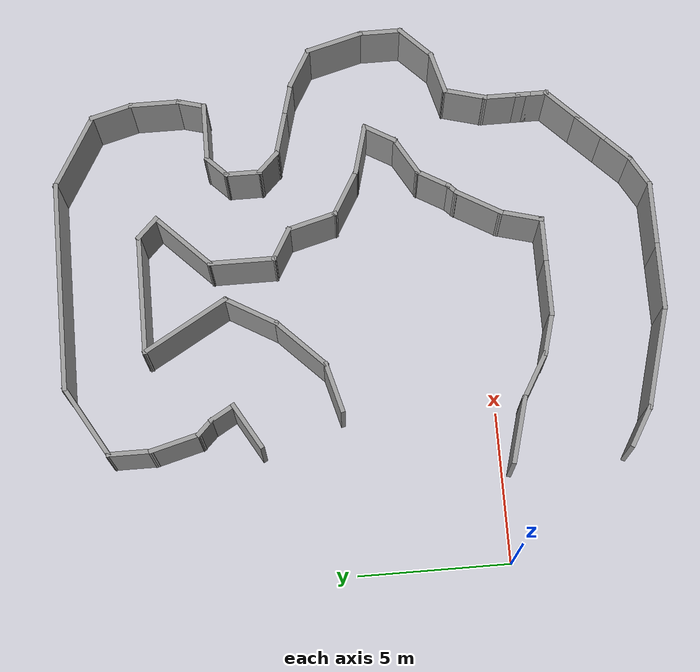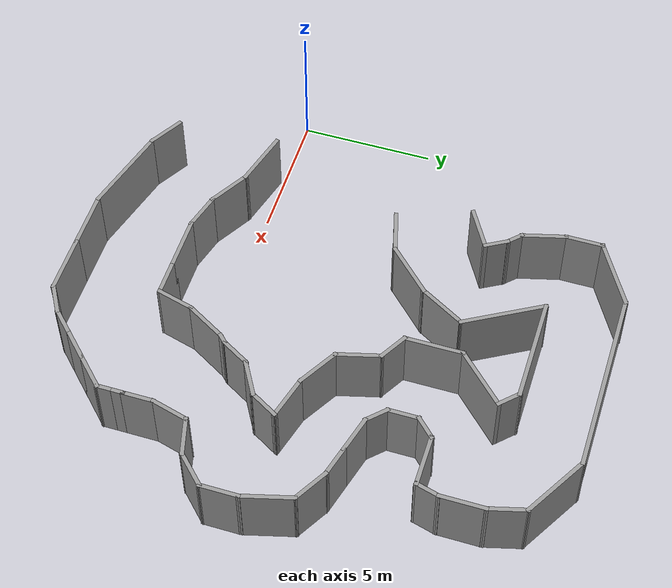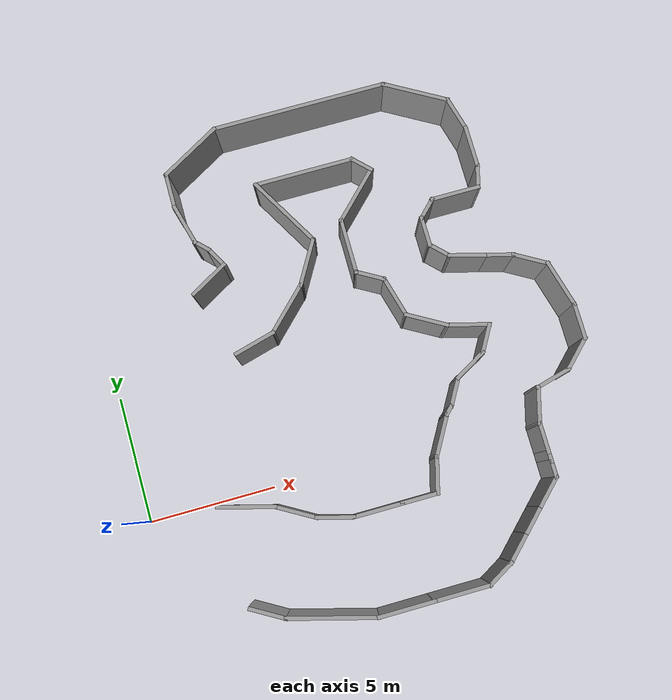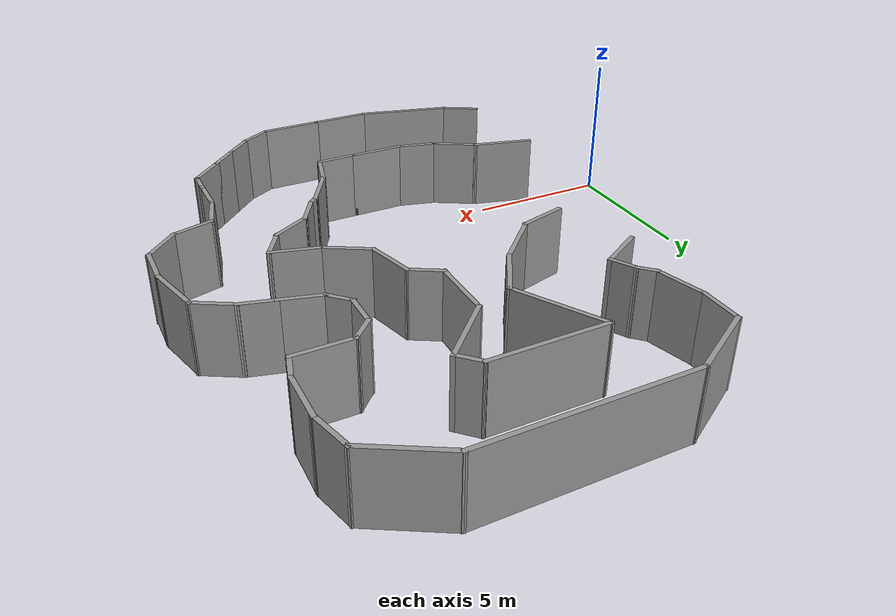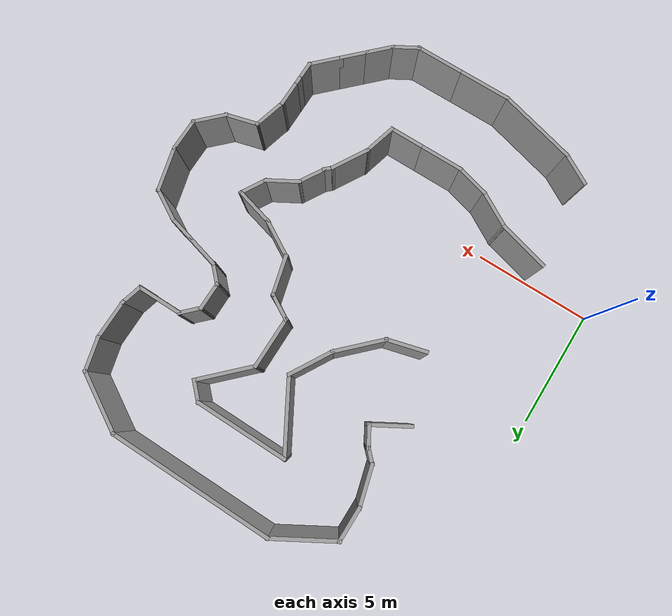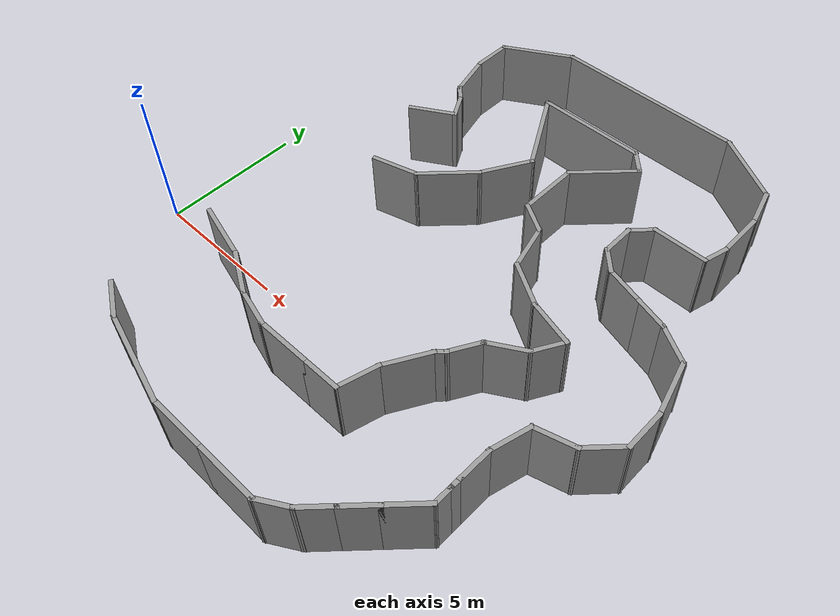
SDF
<sdf version="1.7">
 <model name="racetrackgap">
  <pose>0.224585 2.63558 0 0 -0 0</pose>
  <link name="Wall_10">
   <collision name="Wall_10_Collision">
    <geometry><box><size>1.25 0.15 2.5</size></box></geometry>
    <pose>0 0 1.25 0 -0 0</pose>
   </collision>
   <visual name="Wall_10_Visual">
    <pose>0 0 1.25 0 -0 0</pose>
    <geometry><box><size>1.25 0.15 2.5</size></box></geometry>
    <material>
     <script><uri>file://media/materials/scripts/gazebo.material</uri><name>Gazebo/Grey</name></script>
     <ambient>1 1 1 1</ambient>
    </material>
    <meta><layer>0</layer></meta>
   </visual>
   <pose>12.9009 -7.28003 0 0 -0 0.785398</pose>
  </link>
  <link name="Wall_11">
   <collision name="Wall_11_Collision">
    <geometry><box><size>1.25 0.15 2.5</size></box></geometry>
    <pose>0 0 1.25 0 -0 0</pose>
   </collision>
   <visual name="Wall_11_Visual">
    <pose>0 0 1.25 0 -0 0</pose>
    <geometry><box><size>1.25 0.15 2.5</size></box></geometry>
    <material>
     <script><uri>file://media/materials/scripts/gazebo.material</uri><name>Gazebo/Grey</name></script>
     <ambient>1 1 1 1</ambient>
    </material>
    <meta><layer>0</layer></meta>
   </visual>
   <pose>13.6788 -6.50221 0 0 -0 0.785398</pose>
  </link>
  <link name="Wall_12">
   <collision name="Wall_12_Collision">
    <geometry><box><size>1.5 0.15 2.5</size></box></geometry>
    <pose>0 0 1.25 0 -0 0</pose>
   </collision>
   <visual name="Wall_12_Visual">
    <pose>0 0 1.25 0 -0 0</pose>
    <geometry><box><size>1.5 0.15 2.5</size></box></geometry>
    <material>
     <script><uri>file://media/materials/scripts/gazebo.material</uri><name>Gazebo/Grey</name></script>
     <ambient>1 1 1 1</ambient>
    </material>
    <meta><layer>0</layer></meta>
   </visual>
   <pose>14.545 -5.63601 0 0 -0 0.785398</pose>
  </link>
  <link name="Wall_13">
   <collision name="Wall_13_Collision">
    <geometry><box><size>0.75 0.15 2.5</size></box></geometry>
    <pose>0 0 1.25 0 -0 0</pose>
   </collision>
   <visual name="Wall_13_Visual">
    <pose>0 0 1.25 0 -0 0</pose>
    <geometry><box><size>0.75 0.15 2.5</size></box></geometry>
    <material>
     <script><uri>file://media/materials/scripts/gazebo.material</uri><name>Gazebo/Grey</name></script>
     <ambient>1 1 1 1</ambient>
    </material>
    <meta><layer>0</layer></meta>
   </visual>
   <pose>15.0223 -4.85871 0 0 -0 1.5708</pose>
  </link>
  <link name="Wall_14">
   <collision name="Wall_14_Collision">
    <geometry><box><size>0.5 0.15 2.5</size></box></geometry>
    <pose>0 0 1.25 0 -0 0</pose>
   </collision>
   <visual name="Wall_14_Visual">
    <pose>0 0 1.25 0 -0 0</pose>
    <geometry><box><size>0.5 0.15 2.5</size></box></geometry>
    <material>
     <script><uri>file://media/materials/scripts/gazebo.material</uri><name>Gazebo/Grey</name></script>
     <ambient>1 1 1 1</ambient>
    </material>
    <meta><layer>0</layer></meta>
   </visual>
   <pose>15.0223 -4.38371 0 0 -0 1.5708</pose>
  </link>
  <link name="Wall_15">
   <collision name="Wall_15_Collision">
    <geometry><box><size>1.25 0.15 2.5</size></box></geometry>
    <pose>0 0 1.25 0 -0 0</pose>
   </collision>
   <visual name="Wall_15_Visual">
    <pose>0 0 1.25 0 -0 0</pose>
    <geometry><box><size>1.25 0.15 2.5</size></box></geometry>
    <material>
     <script><uri>file://media/materials/scripts/gazebo.material</uri><name>Gazebo/Grey</name></script>
     <ambient>1 1 1 1</ambient>
    </material>
    <meta><layer>0</layer></meta>
   </visual>
   <pose>15.0223 -3.65871 0 0 -0 1.5708</pose>
  </link>
  <link name="Wall_16">
   <collision name="Wall_16_Collision">
    <geometry><box><size>1.5 0.15 2.5</size></box></geometry>
    <pose>0 0 1.25 0 -0 0</pose>
   </collision>
   <visual name="Wall_16_Visual">
    <pose>0 0 1.25 0 -0 0</pose>
    <geometry><box><size>1.5 0.15 2.5</size></box></geometry>
    <material>
     <script><uri>file://media/materials/scripts/gazebo.material</uri><name>Gazebo/Grey</name></script>
     <ambient>1 1 1 1</ambient>
    </material>
    <meta><layer>0</layer></meta>
   </visual>
   <pose>15.197 -2.45671 0 0 -0 1.309</pose>
  </link>
  <link name="Wall_17">
   <collision name="Wall_17_Collision">
    <geometry><box><size>1.5 0.15 2.5</size></box></geometry>
    <pose>0 0 1.25 0 -0 0</pose>
   </collision>
   <visual name="Wall_17_Visual">
    <pose>0 0 1.25 0 -0 0</pose>
    <geometry><box><size>1.5 0.15 2.5</size></box></geometry>
    <material>
     <script><uri>file://media/materials/scripts/gazebo.material</uri><name>Gazebo/Grey</name></script>
     <ambient>1 1 1 1</ambient>
    </material>
    <meta><layer>0</layer></meta>
   </visual>
   <pose>16.0237 -1.63001 0 0 -0 0.261799</pose>
  </link>
  <link name="Wall_18">
   <collision name="Wall_18_Collision">
    <geometry><box><size>1.5 0.15 2.5</size></box></geometry>
    <pose>0 0 1.25 0 -0 0</pose>
   </collision>
   <visual name="Wall_18_Visual">
    <pose>0 0 1.25 0 -0 0</pose>
    <geometry><box><size>1.5 0.15 2.5</size></box></geometry>
    <material>
     <script><uri>file://media/materials/scripts/gazebo.material</uri><name>Gazebo/Grey</name></script>
     <ambient>1 1 1 1</ambient>
    </material>
    <meta><layer>0</layer></meta>
   </visual>
   <pose>17.153 -0.978009 0 0 -0 0.785398</pose>
  </link>
  <link name="Wall_19">
   <collision name="Wall_19_Collision">
    <geometry><box><size>1.5 0.15 2.5</size></box></geometry>
    <pose>0 0 1.25 0 -0 0</pose>
   </collision>
   <visual name="Wall_19_Visual">
    <pose>0 0 1.25 0 -0 0</pose>
    <geometry><box><size>1.5 0.15 2.5</size></box></geometry>
    <material>
     <script><uri>file://media/materials/scripts/gazebo.material</uri><name>Gazebo/Grey</name></script>
     <ambient>1 1 1 1</ambient>
    </material>
    <meta><layer>0</layer></meta>
   </visual>
   <pose>17.6303 0.174289 0 0 -0 1.5708</pose>
  </link>
  <link name="Wall_20">
   <collision name="Wall_20_Collision">
    <geometry><box><size>2 0.15 2.5</size></box></geometry>
    <pose>0 0 1.25 0 -0 0</pose>
   </collision>
   <visual name="Wall_20_Visual">
    <pose>0 0 1.25 0 -0 0</pose>
    <geometry><box><size>2 0.15 2.5</size></box></geometry>
    <material>
     <script><uri>file://media/materials/scripts/gazebo.material</uri><name>Gazebo/Grey</name></script>
     <ambient>1 1 1 1</ambient>
    </material>
    <meta><layer>0</layer></meta>
   </visual>
   <pose>17.3909 1.74277 0 0 -0 1.8326</pose>
  </link>
  <link name="Wall_21">
   <collision name="Wall_21_Collision">
    <geometry><box><size>1.5 0.15 2.5</size></box></geometry>
    <pose>0 0 1.25 0 -0 0</pose>
   </collision>
   <visual name="Wall_21_Visual">
    <pose>0 0 1.25 0 -0 0</pose>
    <geometry><box><size>1.5 0.15 2.5</size></box></geometry>
    <material>
     <script><uri>file://media/materials/scripts/gazebo.material</uri><name>Gazebo/Grey</name></script>
     <ambient>1 1 1 1</ambient>
    </material>
    <meta><layer>0</layer></meta>
   </visual>
   <pose>16.5669 2.97375 0 0 -0 2.61799</pose>
  </link>
  <link name="Wall_22">
   <collision name="Wall_22_Collision">
    <geometry><box><size>1.25 0.15 2.5</size></box></geometry>
    <pose>0 0 1.25 0 -0 0</pose>
   </collision>
   <visual name="Wall_22_Visual">
    <pose>0 0 1.25 0 -0 0</pose>
    <geometry><box><size>1.25 0.15 2.5</size></box></geometry>
    <material>
     <script><uri>file://media/materials/scripts/gazebo.material</uri><name>Gazebo/Grey</name></script>
     <ambient>1 1 1 1</ambient>
    </material>
    <meta><layer>0</layer></meta>
   </visual>
   <pose>15.4511 3.4536 0 0 -0 2.87979</pose>
  </link>
  <link name="Wall_23">
   <collision name="Wall_23_Collision">
    <geometry><box><size>1.5 0.15 2.5</size></box></geometry>
    <pose>0 0 1.25 0 -0 0</pose>
   </collision>
   <visual name="Wall_23_Visual">
    <pose>0 0 1.25 0 -0 0</pose>
    <geometry><box><size>1.5 0.15 2.5</size></box></geometry>
    <material>
     <script><uri>file://media/materials/scripts/gazebo.material</uri><name>Gazebo/Grey</name></script>
     <ambient>1 1 1 1</ambient>
    </material>
    <meta><layer>0</layer></meta>
   </visual>
   <pose>14.2678 3.77066 0 0 -0 2.87979</pose>
  </link>
  <link name="Wall_24">
   <collision name="Wall_24_Collision">
    <geometry><box><size>1 0.15 2.5</size></box></geometry>
    <pose>0 0 1.25 0 -0 0</pose>
   </collision>
   <visual name="Wall_24_Visual">
    <pose>0 0 1.25 0 -0 0</pose>
    <geometry><box><size>1 0.15 2.5</size></box></geometry>
    <material>
     <script><uri>file://media/materials/scripts/gazebo.material</uri><name>Gazebo/Grey</name></script>
     <ambient>1 1 1 1</ambient>
    </material>
    <meta><layer>0</layer></meta>
   </visual>
   <pose>13.3153 4.24588 0 0 -0 2.35619</pose>
  </link>
  <link name="Wall_27">
   <collision name="Wall_27_Collision">
    <geometry><box><size>1.25 0.15 2.5</size></box></geometry>
    <pose>0 0 1.25 0 -0 0</pose>
   </collision>
   <visual name="Wall_27_Visual">
    <pose>0 0 1.25 0 -0 0</pose>
    <geometry><box><size>1.25 0.15 2.5</size></box></geometry>
    <material>
     <script><uri>file://media/materials/scripts/gazebo.material</uri><name>Gazebo/Grey</name></script>
     <ambient>1 1 1 1</ambient>
    </material>
    <meta><layer>0</layer></meta>
   </visual>
   <pose>13.0148 5.0964 0 0 -0 1.5708</pose>
  </link>
  <link name="Wall_28">
   <collision name="Wall_28_Collision">
    <geometry><box><size>1 0.15 2.5</size></box></geometry>
    <pose>0 0 1.25 0 -0 0</pose>
   </collision>
   <visual name="Wall_28_Visual">
    <pose>0 0 1.25 0 -0 0</pose>
    <geometry><box><size>1 0.15 2.5</size></box></geometry>
    <material>
     <script><uri>file://media/materials/scripts/gazebo.material</uri><name>Gazebo/Grey</name></script>
     <ambient>1 1 1 1</ambient>
    </material>
    <meta><layer>0</layer></meta>
   </visual>
   <pose>13.3153 5.94692 0 0 -0 0.785398</pose>
  </link>
  <link name="Wall_29">
   <collision name="Wall_29_Collision">
    <geometry><box><size>2 0.15 2.5</size></box></geometry>
    <pose>0 0 1.25 0 -0 0</pose>
   </collision>
   <visual name="Wall_29_Visual">
    <pose>0 0 1.25 0 -0 0</pose>
    <geometry><box><size>2 0.15 2.5</size></box></geometry>
    <material>
     <script><uri>file://media/materials/scripts/gazebo.material</uri><name>Gazebo/Grey</name></script>
     <ambient>1 1 1 1</ambient>
    </material>
    <meta><layer>0</layer></meta>
   </visual>
   <pose>14.5408 6.24744 0 0 -0 0</pose>
  </link>
  <link name="Wall_30">
   <collision name="Wall_30_Collision">
    <geometry><box><size>1 0.15 2.5</size></box></geometry>
    <pose>0 0 1.25 0 -0 0</pose>
   </collision>
   <visual name="Wall_30_Visual">
    <pose>0 0 1.25 0 -0 0</pose>
    <geometry><box><size>1 0.15 2.5</size></box></geometry>
    <material>
     <script><uri>file://media/materials/scripts/gazebo.material</uri><name>Gazebo/Grey</name></script>
     <ambient>1 1 1 1</ambient>
    </material>
    <meta><layer>0</layer></meta>
   </visual>
   <pose>15.5758 6.65796 0 0 -0 1.309</pose>
  </link>
  <link name="Wall_31">
   <collision name="Wall_31_Collision">
    <geometry><box><size>1.75 0.15 2.5</size></box></geometry>
    <pose>0 0 1.25 0 -0 0</pose>
   </collision>
   <visual name="Wall_31_Visual">
    <pose>0 0 1.25 0 -0 0</pose>
    <geometry><box><size>1.75 0.15 2.5</size></box></geometry>
    <material>
     <script><uri>file://media/materials/scripts/gazebo.material</uri><name>Gazebo/Grey</name></script>
     <ambient>1 1 1 1</ambient>
    </material>
    <meta><layer>0</layer></meta>
   </visual>
   <pose>15.6858 7.86848 0 0 -0 1.5708</pose>
  </link>
  <link name="Wall_32">
   <collision name="Wall_32_Collision">
    <geometry><box><size>1.5 0.15 2.5</size></box></geometry>
    <pose>0 0 1.25 0 -0 0</pose>
   </collision>
   <visual name="Wall_32_Visual">
    <pose>0 0 1.25 0 -0 0</pose>
    <geometry><box><size>1.5 0.15 2.5</size></box></geometry>
    <material>
     <script><uri>file://media/materials/scripts/gazebo.material</uri><name>Gazebo/Grey</name></script>
     <ambient>1 1 1 1</ambient>
    </material>
    <meta><layer>0</layer></meta>
   </visual>
   <pose>15.5111 9.32048 0 0 -0 1.8326</pose>
  </link>
  <link name="Wall_33">
   <collision name="Wall_33_Collision">
    <geometry><box><size>2.75 0.15 2.5</size></box></geometry>
    <pose>0 0 1.25 0 -0 0</pose>
   </collision>
   <visual name="Wall_33_Visual">
    <pose>0 0 1.25 0 -0 0</pose>
    <geometry><box><size>2.75 0.15 2.5</size></box></geometry>
    <material>
     <script><uri>file://media/materials/scripts/gazebo.material</uri><name>Gazebo/Grey</name></script>
     <ambient>1 1 1 1</ambient>
    </material>
    <meta><layer>0</layer></meta>
   </visual>
   <pose>14.2106 10.6225 0 0 -0 2.61799</pose>
  </link>
  <link name="Wall_34">
   <collision name="Wall_34_Collision">
    <geometry><box><size>7 0.15 2.5</size></box></geometry>
    <pose>0 0 1.25 0 -0 0</pose>
   </collision>
   <visual name="Wall_34_Visual">
    <pose>0 0 1.25 0 -0 0</pose>
    <geometry><box><size>7 0.15 2.5</size></box></geometry>
    <material>
     <script><uri>file://media/materials/scripts/gazebo.material</uri><name>Gazebo/Grey</name></script>
     <ambient>1 1 1 1</ambient>
    </material>
    <meta><layer>0</layer></meta>
   </visual>
   <pose>9.65973 11.2725 0 0 -0 3.14159</pose>
  </link>
  <link name="Wall_35">
   <collision name="Wall_35_Collision">
    <geometry><box><size>2.75 0.15 2.5</size></box></geometry>
    <pose>0 0 1.25 0 -0 0</pose>
   </collision>
   <visual name="Wall_35_Visual">
    <pose>0 0 1.25 0 -0 0</pose>
    <geometry><box><size>2.75 0.15 2.5</size></box></geometry>
    <material>
     <script><uri>file://media/materials/scripts/gazebo.material</uri><name>Gazebo/Grey</name></script>
     <ambient>1 1 1 1</ambient>
    </material>
    <meta><layer>0</layer></meta>
   </visual>
   <pose>5.10889 10.6225 0 0 -0 -2.61799</pose>
  </link>
  <link name="Wall_36">
   <collision name="Wall_36_Collision">
    <geometry><box><size>1.5 0.15 2.5</size></box></geometry>
    <pose>0 0 1.25 0 -0 0</pose>
   </collision>
   <visual name="Wall_36_Visual">
    <pose>0 0 1.25 0 -0 0</pose>
    <geometry><box><size>1.5 0.15 2.5</size></box></geometry>
    <material>
     <script><uri>file://media/materials/scripts/gazebo.material</uri><name>Gazebo/Grey</name></script>
     <ambient>1 1 1 1</ambient>
    </material>
    <meta><layer>0</layer></meta>
   </visual>
   <pose>3.98306 9.29748 0 0 -0 -1.5708</pose>
  </link>
  <link name="Wall_37">
   <collision name="Wall_37_Collision">
    <geometry><box><size>1.75 0.15 2.5</size></box></geometry>
    <pose>0 0 1.25 0 -0 0</pose>
   </collision>
   <visual name="Wall_37_Visual">
    <pose>0 0 1.25 0 -0 0</pose>
    <geometry><box><size>1.75 0.15 2.5</size></box></geometry>
    <material>
     <script><uri>file://media/materials/scripts/gazebo.material</uri><name>Gazebo/Grey</name></script>
     <ambient>1 1 1 1</ambient>
    </material>
    <meta><layer>0</layer></meta>
   </visual>
   <pose>4.19011 7.84974 0 0 -0 -1.309</pose>
  </link>
  <link name="Wall_38">
   <collision name="Wall_38_Collision">
    <geometry><box><size>0.75 0.15 2.5</size></box></geometry>
    <pose>0 0 1.25 0 -0 0</pose>
   </collision>
   <visual name="Wall_38_Visual">
    <pose>0 0 1.25 0 -0 0</pose>
    <geometry><box><size>0.75 0.15 2.5</size></box></geometry>
    <material>
     <script><uri>file://media/materials/scripts/gazebo.material</uri><name>Gazebo/Grey</name></script>
     <ambient>1 1 1 1</ambient>
    </material>
    <meta><layer>0</layer></meta>
   </visual>
   <pose>4.6093 6.86486 0 0 -0 -0.785398</pose>
  </link>
  <link name="Wall_39">
   <collision name="Wall_39_Collision">
    <geometry><box><size>1 0.15 2.5</size></box></geometry>
    <pose>0 0 1.25 0 -0 0</pose>
   </collision>
   <visual name="Wall_39_Visual">
    <pose>0 0 1.25 0 -0 0</pose>
    <geometry><box><size>1 0.15 2.5</size></box></geometry>
    <material>
     <script><uri>file://media/materials/scripts/gazebo.material</uri><name>Gazebo/Grey</name></script>
     <ambient>1 1 1 1</ambient>
    </material>
    <meta><layer>0</layer></meta>
   </visual>
   <pose>5.03393 6.28467 0 0 -0 -1.0472</pose>
  </link>
  <link name="Wall_40">
   <collision name="Wall_40_Collision">
    <geometry><box><size>1.75 0.15 2.5</size></box></geometry>
    <pose>0 0 1.25 0 -0 0</pose>
   </collision>
   <visual name="Wall_40_Visual">
    <pose>0 0 1.25 0 -0 0</pose>
    <geometry><box><size>1.75 0.15 2.5</size></box></geometry>
    <material>
     <script><uri>file://media/materials/scripts/gazebo.material</uri><name>Gazebo/Grey</name></script>
     <ambient>1 1 1 1</ambient>
    </material>
    <meta><layer>0</layer></meta>
   </visual>
   <pose>4.55361 5.51661 0 0 -0 -2.61799</pose>
  </link>
  <link name="Wall_5">
   <collision name="Wall_5_Collision">
    <geometry><box><size>1.5 0.15 2.5</size></box></geometry>
    <pose>0 0 1.25 0 -0 0</pose>
   </collision>
   <visual name="Wall_5_Visual">
    <pose>0 0 1.25 0 -0 0</pose>
    <geometry><box><size>1.5 0.15 2.5</size></box></geometry>
    <material>
     <script><uri>file://media/materials/scripts/gazebo.material</uri><name>Gazebo/Grey</name></script>
     <ambient>1 1 1 1</ambient>
    </material>
    <meta><layer>0</layer></meta>
   </visual>
   <pose>3.53899 -7.0144 0 0 -0 -0.523599</pose>
  </link>
  <link name="Wall_6">
   <collision name="Wall_6_Collision">
    <geometry><box><size>3.5 0.15 2.5</size></box></geometry>
    <pose>0 0 1.25 0 -0 0</pose>
   </collision>
   <visual name="Wall_6_Visual">
    <pose>0 0 1.25 0 -0 0</pose>
    <geometry><box><size>3.5 0.15 2.5</size></box></geometry>
    <material>
     <script><uri>file://media/materials/scripts/gazebo.material</uri><name>Gazebo/Grey</name></script>
     <ambient>1 1 1 1</ambient>
    </material>
    <meta><layer>0</layer></meta>
   </visual>
   <pose>5.74149 -7.78542 0 0 -0 -0.261799</pose>
  </link>
  <link name="Wall_7">
   <collision name="Wall_7_Collision">
    <geometry><box><size>2.25 0.15 2.5</size></box></geometry>
    <pose>0 0 1.25 0 -0 0</pose>
   </collision>
   <visual name="Wall_7_Visual">
    <pose>0 0 1.25 0 -0 0</pose>
    <geometry><box><size>2.25 0.15 2.5</size></box></geometry>
    <material>
     <script><uri>file://media/materials/scripts/gazebo.material</uri><name>Gazebo/Grey</name></script>
     <ambient>1 1 1 1</ambient>
    </material>
    <meta><layer>0</layer></meta>
   </visual>
   <pose>8.40941 -8.21894 0 0 -0 0</pose>
  </link>
  <link name="Wall_74">
   <collision name="Wall_74_Collision">
    <geometry><box><size>2.25 0.15 2.5</size></box></geometry>
    <pose>0 0 1.25 0 -0 0</pose>
   </collision>
   <visual name="Wall_74_Visual">
    <pose>0 0 1.25 0 -0 0</pose>
    <geometry><box><size>2.25 0.15 2.5</size></box></geometry>
    <material>
     <script><uri>file://media/materials/scripts/gazebo.material</uri><name>Gazebo/Grey</name></script>
     <ambient>1 1 1 1</ambient>
    </material>
    <meta><layer>0</layer></meta>
   </visual>
   <pose>3.74342 -3.12593 0 0 -0 -0.261799</pose>
  </link>
  <link name="Wall_75">
   <collision name="Wall_75_Collision">
    <geometry><box><size>1.75 0.15 2.5</size></box></geometry>
    <pose>0 0 1.25 0 -0 0</pose>
   </collision>
   <visual name="Wall_75_Visual">
    <pose>0 0 1.25 0 -0 0</pose>
    <geometry><box><size>1.75 0.15 2.5</size></box></geometry>
    <material>
     <script><uri>file://media/materials/scripts/gazebo.material</uri><name>Gazebo/Grey</name></script>
     <ambient>1 1 1 1</ambient>
    </material>
    <meta><layer>0</layer></meta>
   </visual>
   <pose>5.45046 -3.79769 0 0 -0 -0.523599</pose>
  </link>
  <link name="Wall_76">
   <collision name="Wall_76_Collision">
    <geometry><box><size>1.5 0.15 2.5</size></box></geometry>
    <pose>0 0 1.25 0 -0 0</pose>
   </collision>
   <visual name="Wall_76_Visual">
    <pose>0 0 1.25 0 -0 0</pose>
    <geometry><box><size>1.5 0.15 2.5</size></box></geometry>
    <material>
     <script><uri>file://media/materials/scripts/gazebo.material</uri><name>Gazebo/Grey</name></script>
     <ambient>1 1 1 1</ambient>
    </material>
    <meta><layer>0</layer></meta>
   </visual>
   <pose>6.79528 -4.37239 0 0 -0 -0.261799</pose>
  </link>
  <link name="Wall_77">
   <collision name="Wall_77_Collision">
    <geometry><box><size>2 0.15 2.5</size></box></geometry>
    <pose>0 0 1.25 0 -0 0</pose>
   </collision>
   <visual name="Wall_77_Visual">
    <pose>0 0 1.25 0 -0 0</pose>
    <geometry><box><size>2 0.15 2.5</size></box></geometry>
    <material>
     <script><uri>file://media/materials/scripts/gazebo.material</uri><name>Gazebo/Grey</name></script>
     <ambient>1 1 1 1</ambient>
    </material>
    <meta><layer>0</layer></meta>
   </visual>
   <pose>8.37228 -4.54709 0 0 -0 0</pose>
  </link>
  <link name="Wall_78">
   <collision name="Wall_78_Collision">
    <geometry><box><size>1.5 0.15 2.5</size></box></geometry>
    <pose>0 0 1.25 0 -0 0</pose>
   </collision>
   <visual name="Wall_78_Visual">
    <pose>0 0 1.25 0 -0 0</pose>
    <geometry><box><size>1.5 0.15 2.5</size></box></geometry>
    <material>
     <script><uri>file://media/materials/scripts/gazebo.material</uri><name>Gazebo/Grey</name></script>
     <ambient>1 1 1 1</ambient>
    </material>
    <meta><layer>0</layer></meta>
   </visual>
   <pose>9.97228 -4.54709 0 0 -0 0</pose>
  </link>
  <link name="Wall_79">
   <collision name="Wall_79_Collision">
    <geometry><box><size>1.5 0.15 2.5</size></box></geometry>
    <pose>0 0 1.25 0 -0 0</pose>
   </collision>
   <visual name="Wall_79_Visual">
    <pose>0 0 1.25 0 -0 0</pose>
    <geometry><box><size>1.5 0.15 2.5</size></box></geometry>
    <material>
     <script><uri>file://media/materials/scripts/gazebo.material</uri><name>Gazebo/Grey</name></script>
     <ambient>1 1 1 1</ambient>
    </material>
    <meta><layer>0</layer></meta>
   </visual>
   <pose>10.822 -3.89509 0 0 -0 1.309</pose>
  </link>
  <link name="Wall_8">
   <collision name="Wall_8_Collision">
    <geometry><box><size>2.25 0.15 2.5</size></box></geometry>
    <pose>0 0 1.25 0 -0 0</pose>
   </collision>
   <visual name="Wall_8_Visual">
    <pose>0 0 1.25 0 -0 0</pose>
    <geometry><box><size>2.25 0.15 2.5</size></box></geometry>
    <material>
     <script><uri>file://media/materials/scripts/gazebo.material</uri><name>Gazebo/Grey</name></script>
     <ambient>1 1 1 1</ambient>
    </material>
    <meta><layer>0</layer></meta>
   </visual>
   <pose>10.5094 -8.21894 0 0 -0 0</pose>
  </link>
  <link name="Wall_80">
   <collision name="Wall_80_Collision">
    <geometry><box><size>1.75 0.15 2.5</size></box></geometry>
    <pose>0 0 1.25 0 -0 0</pose>
   </collision>
   <visual name="Wall_80_Visual">
    <pose>0 0 1.25 0 -0 0</pose>
    <geometry><box><size>1.75 0.15 2.5</size></box></geometry>
    <material>
     <script><uri>file://media/materials/scripts/gazebo.material</uri><name>Gazebo/Grey</name></script>
     <ambient>1 1 1 1</ambient>
    </material>
    <meta><layer>0</layer></meta>
   </visual>
   <pose>11.3967 -2.55027 0 0 -0 1.0472</pose>
  </link>
  <link name="Wall_81">
   <collision name="Wall_81_Collision">
    <geometry><box><size>0.5 0.15 2.5</size></box></geometry>
    <pose>0 0 1.25 0 -0 0</pose>
   </collision>
   <visual name="Wall_81_Visual">
    <pose>0 0 1.25 0 -0 0</pose>
    <geometry><box><size>0.5 0.15 2.5</size></box></geometry>
    <material>
     <script><uri>file://media/materials/scripts/gazebo.material</uri><name>Gazebo/Grey</name></script>
     <ambient>1 1 1 1</ambient>
    </material>
    <meta><layer>0</layer></meta>
   </visual>
   <pose>11.9204 -1.73371 0 0 -0 0.785398</pose>
  </link>
  <link name="Wall_82">
   <collision name="Wall_82_Collision">
    <geometry><box><size>1.25 0.15 2.5</size></box></geometry>
    <pose>0 0 1.25 0 -0 0</pose>
   </collision>
   <visual name="Wall_82_Visual">
    <pose>0 0 1.25 0 -0 0</pose>
    <geometry><box><size>1.25 0.15 2.5</size></box></geometry>
    <material>
     <script><uri>file://media/materials/scripts/gazebo.material</uri><name>Gazebo/Grey</name></script>
     <ambient>1 1 1 1</ambient>
    </material>
    <meta><layer>0</layer></meta>
   </visual>
   <pose>12.3192 -1.13365 0 0 -0 1.0472</pose>
  </link>
  <link name="Wall_83">
   <collision name="Wall_83_Collision">
    <geometry><box><size>1.5 0.15 2.5</size></box></geometry>
    <pose>0 0 1.25 0 -0 0</pose>
   </collision>
   <visual name="Wall_83_Visual">
    <pose>0 0 1.25 0 -0 0</pose>
    <geometry><box><size>1.5 0.15 2.5</size></box></geometry>
    <material>
     <script><uri>file://media/materials/scripts/gazebo.material</uri><name>Gazebo/Grey</name></script>
     <ambient>1 1 1 1</ambient>
    </material>
    <meta><layer>0</layer></meta>
   </visual>
   <pose>13.1787 -0.319836 0 0 -0 0.523599</pose>
  </link>
  <link name="Wall_84">
   <collision name="Wall_84_Collision">
    <geometry><box><size>1.25 0.15 2.5</size></box></geometry>
    <pose>0 0 1.25 0 -0 0</pose>
   </collision>
   <visual name="Wall_84_Visual">
    <pose>0 0 1.25 0 -0 0</pose>
    <geometry><box><size>1.25 0.15 2.5</size></box></geometry>
    <material>
     <script><uri>file://media/materials/scripts/gazebo.material</uri><name>Gazebo/Grey</name></script>
     <ambient>1 1 1 1</ambient>
    </material>
    <meta><layer>0</layer></meta>
   </visual>
   <pose>14.0383 0.493978 0 0 -0 1.0472</pose>
  </link>
  <link name="Wall_85">
   <collision name="Wall_85_Collision">
    <geometry><box><size>1.75 0.15 2.5</size></box></geometry>
    <pose>0 0 1.25 0 -0 0</pose>
   </collision>
   <visual name="Wall_85_Visual">
    <pose>0 0 1.25 0 -0 0</pose>
    <geometry><box><size>1.75 0.15 2.5</size></box></geometry>
    <material>
     <script><uri>file://media/materials/scripts/gazebo.material</uri><name>Gazebo/Grey</name></script>
     <ambient>1 1 1 1</ambient>
    </material>
    <meta><layer>0</layer></meta>
   </visual>
   <pose>13.5406 1.17735 0 0 -0 2.87979</pose>
  </link>
  <link name="Wall_86">
   <collision name="Wall_86_Collision">
    <geometry><box><size>1.75 0.15 2.5</size></box></geometry>
    <pose>0 0 1.25 0 -0 0</pose>
   </collision>
   <visual name="Wall_86_Visual">
    <pose>0 0 1.25 0 -0 0</pose>
    <geometry><box><size>1.75 0.15 2.5</size></box></geometry>
    <material>
     <script><uri>file://media/materials/scripts/gazebo.material</uri><name>Gazebo/Grey</name></script>
     <ambient>1 1 1 1</ambient>
    </material>
    <meta><layer>0</layer></meta>
   </visual>
   <pose>12.075 1.7844 0 0 -0 2.61799</pose>
  </link>
  <link name="Wall_87">
   <collision name="Wall_87_Collision">
    <geometry><box><size>1.75 0.15 2.5</size></box></geometry>
    <pose>0 0 1.25 0 -0 0</pose>
   </collision>
   <visual name="Wall_87_Visual">
    <pose>0 0 1.25 0 -0 0</pose>
    <geometry><box><size>1.75 0.15 2.5</size></box></geometry>
    <material>
     <script><uri>file://media/materials/scripts/gazebo.material</uri><name>Gazebo/Grey</name></script>
     <ambient>1 1 1 1</ambient>
    </material>
    <meta><layer>0</layer></meta>
   </visual>
   <pose>11.1751 2.95714 0 0 -0 1.8326</pose>
  </link>
  <link name="Wall_88">
   <collision name="Wall_88_Collision">
    <geometry><box><size>1.25 0.15 2.5</size></box></geometry>
    <pose>0 0 1.25 0 -0 0</pose>
   </collision>
   <visual name="Wall_88_Visual">
    <pose>0 0 1.25 0 -0 0</pose>
    <geometry><box><size>1.25 0.15 2.5</size></box></geometry>
    <material>
     <script><uri>file://media/materials/scripts/gazebo.material</uri><name>Gazebo/Grey</name></script>
     <ambient>1 1 1 1</ambient>
    </material>
    <meta><layer>0</layer></meta>
   </visual>
   <pose>10.4918 4.00488 0 0 -0 2.61799</pose>
  </link>
  <link name="Wall_89">
   <collision name="Wall_89_Collision">
    <geometry><box><size>2.25 0.15 2.5</size></box></geometry>
    <pose>0 0 1.25 0 -0 0</pose>
   </collision>
   <visual name="Wall_89_Visual">
    <pose>0 0 1.25 0 -0 0</pose>
    <geometry><box><size>2.25 0.15 2.5</size></box></geometry>
    <material>
     <script><uri>file://media/materials/scripts/gazebo.material</uri><name>Gazebo/Grey</name></script>
     <ambient>1 1 1 1</ambient>
    </material>
    <meta><layer>0</layer></meta>
   </visual>
   <pose>10.0154 5.32988 0 0 -0 1.5708</pose>
  </link>
  <link name="Wall_9">
   <collision name="Wall_9_Collision">
    <geometry><box><size>1.25 0.15 2.5</size></box></geometry>
    <pose>0 0 1.25 0 -0 0</pose>
   </collision>
   <visual name="Wall_9_Visual">
    <pose>0 0 1.25 0 -0 0</pose>
    <geometry><box><size>1.25 0.15 2.5</size></box></geometry>
    <material>
     <script><uri>file://media/materials/scripts/gazebo.material</uri><name>Gazebo/Grey</name></script>
     <ambient>1 1 1 1</ambient>
    </material>
    <meta><layer>0</layer></meta>
   </visual>
   <pose>12.0357 -7.94394 0 0 -0 0.523599</pose>
  </link>
  <link name="Wall_90">
   <collision name="Wall_90_Collision">
    <geometry><box><size>2.5 0.15 2.5</size></box></geometry>
    <pose>0 0 1.25 0 -0 0</pose>
   </collision>
   <visual name="Wall_90_Visual">
    <pose>0 0 1.25 0 -0 0</pose>
    <geometry><box><size>2.5 0.15 2.5</size></box></geometry>
    <material>
     <script><uri>file://media/materials/scripts/gazebo.material</uri><name>Gazebo/Grey</name></script>
     <ambient>1 1 1 1</ambient>
    </material>
    <meta><layer>0</layer></meta>
   </visual>
   <pose>10.8463 7.21073 0 0 -0 0.785398</pose>
  </link>
  <link name="Wall_91">
   <collision name="Wall_91_Collision">
    <geometry><box><size>1 0.15 2.5</size></box></geometry>
    <pose>0 0 1.25 0 -0 0</pose>
   </collision>
   <visual name="Wall_91_Visual">
    <pose>0 0 1.25 0 -0 0</pose>
    <geometry><box><size>1 0.15 2.5</size></box></geometry>
    <material>
     <script><uri>file://media/materials/scripts/gazebo.material</uri><name>Gazebo/Grey</name></script>
     <ambient>1 1 1 1</ambient>
    </material>
    <meta><layer>0</layer></meta>
   </visual>
   <pose>11.3766 8.34211 0 0 -0 2.35619</pose>
  </link>
  <link name="Wall_92">
   <collision name="Wall_92_Collision">
    <geometry><box><size>4 0.15 2.5</size></box></geometry>
    <pose>0 0 1.25 0 -0 0</pose>
   </collision>
   <visual name="Wall_92_Visual">
    <pose>0 0 1.25 0 -0 0</pose>
    <geometry><box><size>4 0.15 2.5</size></box></geometry>
    <material>
     <script><uri>file://media/materials/scripts/gazebo.material</uri><name>Gazebo/Grey</name></script>
     <ambient>1 1 1 1</ambient>
    </material>
    <meta><layer>0</layer></meta>
   </visual>
   <pose>9.15111 8.64263 0 0 -0 3.14159</pose>
  </link>
  <link name="Wall_93">
   <collision name="Wall_93_Collision">
    <geometry><box><size>3.25 0.15 2.5</size></box></geometry>
    <pose>0 0 1.25 0 -0 0</pose>
   </collision>
   <visual name="Wall_93_Visual">
    <pose>0 0 1.25 0 -0 0</pose>
    <geometry><box><size>3.25 0.15 2.5</size></box></geometry>
    <material>
     <script><uri>file://media/materials/scripts/gazebo.material</uri><name>Gazebo/Grey</name></script>
     <ambient>1 1 1 1</ambient>
    </material>
    <meta><layer>0</layer></meta>
   </visual>
   <pose>8.00111 7.30029 0 0 -0 -1.0472</pose>
  </link>
  <link name="Wall_94">
   <collision name="Wall_94_Collision">
    <geometry><box><size>2 0.15 2.5</size></box></geometry>
    <pose>0 0 1.25 0 -0 0</pose>
   </collision>
   <visual name="Wall_94_Visual">
    <pose>0 0 1.25 0 -0 0</pose>
    <geometry><box><size>2 0.15 2.5</size></box></geometry>
    <material>
     <script><uri>file://media/materials/scripts/gazebo.material</uri><name>Gazebo/Grey</name></script>
     <ambient>1 1 1 1</ambient>
    </material>
    <meta><layer>0</layer></meta>
   </visual>
   <pose>8.31361 5.15687 0 0 -0 -2.0944</pose>
  </link>
  <link name="Wall_95">
   <collision name="Wall_95_Collision">
    <geometry><box><size>2.25 0.15 2.5</size></box></geometry>
    <pose>0 0 1.25 0 -0 0</pose>
   </collision>
   <visual name="Wall_95_Visual">
    <pose>0 0 1.25 0 -0 0</pose>
    <geometry><box><size>2.25 0.15 2.5</size></box></geometry>
    <material>
     <script><uri>file://media/materials/scripts/gazebo.material</uri><name>Gazebo/Grey</name></script>
     <ambient>1 1 1 1</ambient>
    </material>
    <meta><layer>0</layer></meta>
   </visual>
   <pose>7.10865 3.61334 0 0 -0 -2.35619</pose>
  </link>
  <link name="Wall_96">
   <collision name="Wall_96_Collision">
    <geometry><box><size>1.75 0.15 2.5</size></box></geometry>
    <pose>0 0 1.25 0 -0 0</pose>
   </collision>
   <visual name="Wall_96_Visual">
    <pose>0 0 1.25 0 -0 0</pose>
    <geometry><box><size>1.75 0.15 2.5</size></box></geometry>
    <material>
     <script><uri>file://media/materials/scripts/gazebo.material</uri><name>Gazebo/Grey</name></script>
     <ambient>1 1 1 1</ambient>
    </material>
    <meta><layer>0</layer></meta>
   </visual>
   <pose>5.59344 2.66382 0 0 -0 -2.87979</pose>
  </link>
  <static>1</static>
 </model>
</sdf>
